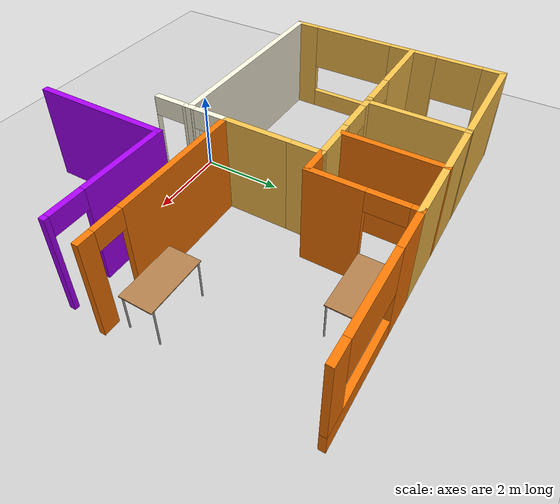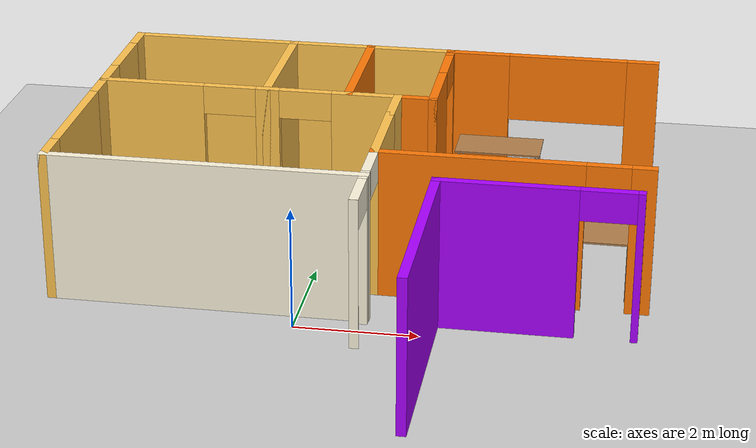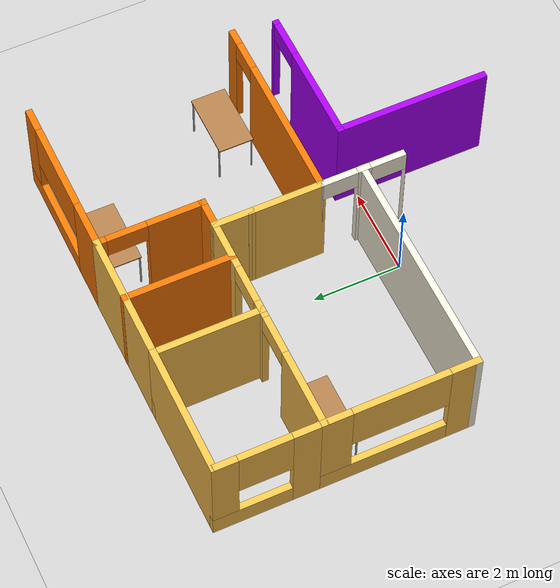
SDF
<sdf version="1.6">
 <world name="default">
  <model name="ground_plane">
   <static>1</static>
   <link name="link">
    <collision name="collision">
     <geometry><plane><normal>0 0 1</normal><size>100 100</size></plane></geometry>
     <surface><friction><ode><mu>100</mu><mu2>50</mu2></ode></friction></surface>
    </collision>
    <visual name="visual">
     <cast_shadows>0</cast_shadows>
     <geometry><plane><normal>0 0 1</normal><size>100 100</size></plane></geometry>
     <material>
      <script><uri>file://media/materials/scripts/gazebo.material</uri><name>Gazebo/Grey</name></script>
     </material>
    </visual>
   </link>
  </model>
  <model name="Building">
   <pose>0.68406 -1.71329 0 0 -0 0</pose>
   <link name="Wall_115">
    <pose>-4.7058 3.80629 0 0 -0 1.5708</pose>
    <visual name="Wall_115_Visual_0">
     <pose>-1.41322 0 1.25 0 -0 0</pose>
     <geometry><box><size>0.673551 0.15 2.5</size></box></geometry>
     <material>
      <script><uri>file://media/materials/scripts/gazebo.material</uri><name>Gazebo/Grey</name></script>
      <ambient>1 0.764706 0.305882 1</ambient>
     </material>
     <meta><layer>0</layer></meta>
    </visual>
    <collision name="Wall_115_Collision_0">
     <geometry><box><size>0.673551 0.15 2.5</size></box></geometry>
     <pose>-1.41322 0 1.25 0 -0 0</pose>
    </collision>
    <visual name="Wall_115_Visual_1">
     <pose>0.336776 0 0.25 0 -0 0</pose>
     <geometry><box><size>2.82645 0.15 0.5</size></box></geometry>
     <material>
      <script><uri>file://media/materials/scripts/gazebo.material</uri><name>Gazebo/Grey</name></script>
      <ambient>1 0.764706 0.305882 1</ambient>
     </material>
     <meta><layer>0</layer></meta>
    </visual>
    <collision name="Wall_115_Collision_1">
     <geometry><box><size>2.82645 0.15 0.5</size></box></geometry>
     <pose>0.336776 0 0.25 0 -0 0</pose>
    </collision>
    <visual name="Wall_115_Visual_2">
     <pose>1.40974 0 1.5 0 -0 0</pose>
     <geometry><box><size>0.680513 0.15 2</size></box></geometry>
     <material>
      <script><uri>file://media/materials/scripts/gazebo.material</uri><name>Gazebo/Grey</name></script>
      <ambient>1 0.764706 0.305882 1</ambient>
     </material>
     <meta><layer>0</layer></meta>
    </visual>
    <collision name="Wall_115_Collision_2">
     <geometry><box><size>0.680513 0.15 2</size></box></geometry>
     <pose>1.40974 0 1.5 0 -0 0</pose>
    </collision>
    <visual name="Wall_115_Visual_3">
     <pose>-0.003481 0 1.9 0 -0 0</pose>
     <geometry><box><size>2.14594 0.15 1.2</size></box></geometry>
     <material>
      <script><uri>file://media/materials/scripts/gazebo.material</uri><name>Gazebo/Grey</name></script>
      <ambient>1 0.764706 0.305882 1</ambient>
     </material>
     <meta><layer>0</layer></meta>
    </visual>
    <collision name="Wall_115_Collision_3">
     <geometry><box><size>2.14594 0.15 1.2</size></box></geometry>
     <pose>-0.003481 0 1.9 0 -0 0</pose>
    </collision>
   </link>
   <link name="Wall_116">
    <pose>-2.1558 5.48129 0 0 -0 0</pose>
    <visual name="Wall_116_Visual_0">
     <pose>-1.70501 0 1.25 0 -0 0</pose>
     <geometry><box><size>1.83998 0.15 2.5</size></box></geometry>
     <material>
      <script><uri>file://media/materials/scripts/gazebo.material</uri><name>Gazebo/Grey</name></script>
      <ambient>1 0.764706 0.305882 1</ambient>
     </material>
     <meta><layer>0</layer></meta>
    </visual>
    <collision name="Wall_116_Collision_0">
     <geometry><box><size>1.83998 0.15 2.5</size></box></geometry>
     <pose>-1.70501 0 1.25 0 -0 0</pose>
    </collision>
    <visual name="Wall_116_Visual_1">
     <pose>0.319979 0 1.25 0 -0 0</pose>
     <geometry><box><size>0.41 0.15 2.5</size></box></geometry>
     <material>
      <script><uri>file://media/materials/scripts/gazebo.material</uri><name>Gazebo/Grey</name></script>
      <ambient>1 0.764706 0.305882 1</ambient>
     </material>
     <meta><layer>0</layer></meta>
    </visual>
    <collision name="Wall_116_Collision_1">
     <geometry><box><size>0.41 0.15 2.5</size></box></geometry>
     <pose>0.319979 0 1.25 0 -0 0</pose>
    </collision>
    <visual name="Wall_116_Visual_2">
     <pose>2.02499 0 1.25 0 -0 0</pose>
     <geometry><box><size>1.20002 0.15 2.5</size></box></geometry>
     <material>
      <script><uri>file://media/materials/scripts/gazebo.material</uri><name>Gazebo/Grey</name></script>
      <ambient>1 0.764706 0.305882 1</ambient>
     </material>
     <meta><layer>0</layer></meta>
    </visual>
    <collision name="Wall_116_Collision_2">
     <geometry><box><size>1.20002 0.15 2.5</size></box></geometry>
     <pose>2.02499 0 1.25 0 -0 0</pose>
    </collision>
    <visual name="Wall_116_Visual_3">
     <pose>-0.335021 0 2.25 0 -0 0</pose>
     <geometry><box><size>0.9 0.15 0.5</size></box></geometry>
     <material>
      <script><uri>file://media/materials/scripts/gazebo.material</uri><name>Gazebo/Grey</name></script>
      <ambient>1 0.764706 0.305882 1</ambient>
     </material>
     <meta><layer>0</layer></meta>
    </visual>
    <collision name="Wall_116_Collision_3">
     <geometry><box><size>0.9 0.15 0.5</size></box></geometry>
     <pose>-0.335021 0 2.25 0 -0 0</pose>
    </collision>
    <visual name="Wall_116_Visual_4">
     <pose>0.974979 0 2.25 0 -0 0</pose>
     <geometry><box><size>0.9 0.15 0.5</size></box></geometry>
     <material>
      <script><uri>file://media/materials/scripts/gazebo.material</uri><name>Gazebo/Grey</name></script>
      <ambient>1 0.764706 0.305882 1</ambient>
     </material>
     <meta><layer>0</layer></meta>
    </visual>
    <collision name="Wall_116_Collision_4">
     <geometry><box><size>0.9 0.15 0.5</size></box></geometry>
     <pose>0.974979 0 2.25 0 -0 0</pose>
    </collision>
   </link>
   <link name="Wall_117">
    <collision name="Wall_117_Collision">
     <geometry><box><size>0.939813 0.15 2.5</size></box></geometry>
     <pose>0 0 1.25 0 -0 0</pose>
    </collision>
    <visual name="Wall_117_Visual">
     <pose>0 0 1.25 0 -0 0</pose>
     <geometry><box><size>0.939813 0.15 2.5</size></box></geometry>
     <material>
      <script><uri>file://media/materials/scripts/gazebo.material</uri><name>Gazebo/Grey</name></script>
      <ambient>1 0.764706 0.305882 1</ambient>
     </material>
     <meta><layer>0</layer></meta>
    </visual>
    <pose>0.390532 5.0864 0 0 0 -1.58008</pose>
   </link>
   <link name="Wall_119">
    <pose>-4.7058 6.65629 0 0 -0 1.5708</pose>
    <visual name="Wall_119_Visual_0">
     <pose>-0.875559 0 1.25 0 -0 0</pose>
     <geometry><box><size>0.748882 0.15 2.5</size></box></geometry>
     <material>
      <script><uri>file://media/materials/scripts/gazebo.material</uri><name>Gazebo/Grey</name></script>
      <ambient>1 0.764706 0.305882 1</ambient>
     </material>
     <meta><layer>0</layer></meta>
    </visual>
    <collision name="Wall_119_Collision_0">
     <geometry><box><size>0.748882 0.15 2.5</size></box></geometry>
     <pose>-0.875559 0 1.25 0 -0 0</pose>
    </collision>
    <visual name="Wall_119_Visual_1">
     <pose>0.374441 0 0.25 0 -0 0</pose>
     <geometry><box><size>1.75112 0.15 0.5</size></box></geometry>
     <material>
      <script><uri>file://media/materials/scripts/gazebo.material</uri><name>Gazebo/Grey</name></script>
      <ambient>1 0.764706 0.305882 1</ambient>
     </material>
     <meta><layer>0</layer></meta>
    </visual>
    <collision name="Wall_119_Collision_1">
     <geometry><box><size>1.75112 0.15 0.5</size></box></geometry>
     <pose>0.374441 0 0.25 0 -0 0</pose>
    </collision>
    <visual name="Wall_119_Visual_2">
     <pose>0.959696 0 1.5 0 -0 0</pose>
     <geometry><box><size>0.580608 0.15 2</size></box></geometry>
     <material>
      <script><uri>file://media/materials/scripts/gazebo.material</uri><name>Gazebo/Grey</name></script>
      <ambient>1 0.764706 0.305882 1</ambient>
     </material>
     <meta><layer>0</layer></meta>
    </visual>
    <collision name="Wall_119_Collision_2">
     <geometry><box><size>0.580608 0.15 2</size></box></geometry>
     <pose>0.959696 0 1.5 0 -0 0</pose>
    </collision>
    <visual name="Wall_119_Visual_3">
     <pose>0.084137 0 1.9 0 -0 0</pose>
     <geometry><box><size>1.17051 0.15 1.2</size></box></geometry>
     <material>
      <script><uri>file://media/materials/scripts/gazebo.material</uri><name>Gazebo/Grey</name></script>
      <ambient>1 0.764706 0.305882 1</ambient>
     </material>
     <meta><layer>0</layer></meta>
    </visual>
    <collision name="Wall_119_Collision_3">
     <geometry><box><size>1.17051 0.15 1.2</size></box></geometry>
     <pose>0.084137 0 1.9 0 -0 0</pose>
    </collision>
   </link>
   <link name="Wall_120">
    <collision name="Wall_120_Collision">
     <geometry><box><size>3 0.15 2.5</size></box></geometry>
     <pose>0 0 1.25 0 -0 0</pose>
    </collision>
    <visual name="Wall_120_Visual">
     <pose>0 0 1.25 0 -0 0</pose>
     <geometry><box><size>3 0.15 2.5</size></box></geometry>
     <material>
      <script><uri>file://media/materials/scripts/gazebo.material</uri><name>Gazebo/Grey</name></script>
      <ambient>1 0.764706 0.305882 1</ambient>
     </material>
     <meta><layer>0</layer></meta>
    </visual>
    <pose>-3.2808 7.83129 0 0 -0 0</pose>
   </link>
   <link name="Wall_121">
    <collision name="Wall_121_Collision">
     <geometry><box><size>2.5 0.15 2.5</size></box></geometry>
     <pose>0 0 1.25 0 -0 0</pose>
    </collision>
    <visual name="Wall_121_Visual">
     <pose>0 0 1.25 0 -0 0</pose>
     <geometry><box><size>2.5 0.15 2.5</size></box></geometry>
     <material>
      <script><uri>file://media/materials/scripts/gazebo.material</uri><name>Gazebo/Grey</name></script>
      <ambient>1 0.764706 0.305882 1</ambient>
     </material>
     <meta><layer>0</layer></meta>
    </visual>
    <pose>-1.8558 6.65629 0 0 0 -1.5708</pose>
   </link>
   <link name="Wall_123">
    <collision name="Wall_123_Collision">
     <geometry><box><size>0.75 0.15 2.5</size></box></geometry>
     <pose>0 0 1.25 0 -0 0</pose>
    </collision>
    <visual name="Wall_123_Visual">
     <pose>0 0 1.25 0 -0 0</pose>
     <geometry><box><size>0.75 0.15 2.5</size></box></geometry>
     <material>
      <script><uri>file://media/materials/scripts/gazebo.material</uri><name>Gazebo/Grey</name></script>
      <ambient>0.996078 0.47451 0.0196078 1</ambient>
     </material>
     <meta><layer>0</layer></meta>
    </visual>
    <pose>0.694198 5.48129 0 0 -0 0</pose>
   </link>
   <link name="Wall_124">
    <pose>0.994198 6.65629 0 0 -0 1.5708</pose>
    <visual name="Wall_124_Visual_0">
     <pose>-0.586337 0 1.25 0 -0 0</pose>
     <geometry><box><size>1.32733 0.15 2.5</size></box></geometry>
     <material>
      <script><uri>file://media/materials/scripts/gazebo.material</uri><name>Gazebo/Grey</name></script>
      <ambient>0.996078 0.47451 0.0196078 1</ambient>
     </material>
     <meta><layer>0</layer></meta>
    </visual>
    <collision name="Wall_124_Collision_0">
     <geometry><box><size>1.32733 0.15 2.5</size></box></geometry>
     <pose>-0.586337 0 1.25 0 -0 0</pose>
    </collision>
    <visual name="Wall_124_Visual_1">
     <pose>1.11366 0 1.25 0 -0 0</pose>
     <geometry><box><size>0.272675 0.15 2.5</size></box></geometry>
     <material>
      <script><uri>file://media/materials/scripts/gazebo.material</uri><name>Gazebo/Grey</name></script>
      <ambient>0.996078 0.47451 0.0196078 1</ambient>
     </material>
     <meta><layer>0</layer></meta>
    </visual>
    <collision name="Wall_124_Collision_1">
     <geometry><box><size>0.272675 0.15 2.5</size></box></geometry>
     <pose>1.11366 0 1.25 0 -0 0</pose>
    </collision>
    <visual name="Wall_124_Visual_2">
     <pose>0.527325 0 2.25 0 -0 0</pose>
     <geometry><box><size>0.9 0.15 0.5</size></box></geometry>
     <material>
      <script><uri>file://media/materials/scripts/gazebo.material</uri><name>Gazebo/Grey</name></script>
      <ambient>0.996078 0.47451 0.0196078 1</ambient>
     </material>
     <meta><layer>0</layer></meta>
    </visual>
    <collision name="Wall_124_Collision_2">
     <geometry><box><size>0.9 0.15 0.5</size></box></geometry>
     <pose>0.527325 0 2.25 0 -0 0</pose>
    </collision>
   </link>
   <link name="Wall_125">
    <collision name="Wall_125_Collision">
     <geometry><box><size>3 0.15 2.5</size></box></geometry>
     <pose>0 0 1.25 0 -0 0</pose>
    </collision>
    <visual name="Wall_125_Visual">
     <pose>0 0 1.25 0 -0 0</pose>
     <geometry><box><size>3 0.15 2.5</size></box></geometry>
     <material>
      <script><uri>file://media/materials/scripts/gazebo.material</uri><name>Gazebo/Grey</name></script>
      <ambient>1 0.764706 0.305882 1</ambient>
     </material>
     <meta><layer>0</layer></meta>
    </visual>
    <pose>-0.430802 7.83129 0 0 0 -3.14159</pose>
   </link>
   <link name="Wall_127">
    <pose>2.7942 7.83129 0 0 -0 0</pose>
    <visual name="Wall_127_Visual_0">
     <pose>-1.31004 0 1.25 0 -0 0</pose>
     <geometry><box><size>1.12992 0.15 2.5</size></box></geometry>
     <material>
      <script><uri>file://media/materials/scripts/gazebo.material</uri><name>Gazebo/Grey</name></script>
      <ambient>0.996078 0.47451 0.0196078 1</ambient>
     </material>
     <meta><layer>0</layer></meta>
    </visual>
    <collision name="Wall_127_Collision_0">
     <geometry><box><size>1.12992 0.15 2.5</size></box></geometry>
     <pose>-1.31004 0 1.25 0 -0 0</pose>
    </collision>
    <visual name="Wall_127_Visual_1">
     <pose>0.564959 0 0.25 0 -0 0</pose>
     <geometry><box><size>2.62008 0.15 0.5</size></box></geometry>
     <material>
      <script><uri>file://media/materials/scripts/gazebo.material</uri><name>Gazebo/Grey</name></script>
      <ambient>0.996078 0.47451 0.0196078 1</ambient>
     </material>
     <meta><layer>0</layer></meta>
    </visual>
    <collision name="Wall_127_Collision_1">
     <geometry><box><size>2.62008 0.15 0.5</size></box></geometry>
     <pose>0.564959 0 0.25 0 -0 0</pose>
    </collision>
    <visual name="Wall_127_Visual_2">
     <pose>1.59653 0 1.5 0 -0 0</pose>
     <geometry><box><size>0.556934 0.15 2</size></box></geometry>
     <material>
      <script><uri>file://media/materials/scripts/gazebo.material</uri><name>Gazebo/Grey</name></script>
      <ambient>0.996078 0.47451 0.0196078 1</ambient>
     </material>
     <meta><layer>0</layer></meta>
    </visual>
    <collision name="Wall_127_Collision_2">
     <geometry><box><size>0.556934 0.15 2</size></box></geometry>
     <pose>1.59653 0 1.5 0 -0 0</pose>
    </collision>
    <visual name="Wall_127_Visual_3">
     <pose>0.286491 0 1.9 0 -0 0</pose>
     <geometry><box><size>2.06315 0.15 1.2</size></box></geometry>
     <material>
      <script><uri>file://media/materials/scripts/gazebo.material</uri><name>Gazebo/Grey</name></script>
      <ambient>0.996078 0.47451 0.0196078 1</ambient>
     </material>
     <meta><layer>0</layer></meta>
    </visual>
    <collision name="Wall_127_Collision_3">
     <geometry><box><size>2.06315 0.15 1.2</size></box></geometry>
     <pose>0.286491 0 1.9 0 -0 0</pose>
    </collision>
   </link>
   <link name="Wall_129">
    <collision name="Wall_129_Collision">
     <geometry><box><size>2.5 0.15 2.5</size></box></geometry>
     <pose>0 0 1.25 0 -0 0</pose>
    </collision>
    <visual name="Wall_129_Visual">
     <pose>0 0 1.25 0 -0 0</pose>
     <geometry><box><size>2.5 0.15 2.5</size></box></geometry>
     <material>
      <script><uri>file://media/materials/scripts/gazebo.material</uri><name>Gazebo/Grey</name></script>
      <ambient>0.996078 0.47451 0.0196078 1</ambient>
     </material>
     <meta><layer>0</layer></meta>
    </visual>
    <pose>-0.450823 6.65861 0 0 -0 1.5708</pose>
   </link>
   <link name="Wall_23">
    <pose>0.386867 2.16651 0 0 0 -1.5708</pose>
    <visual name="Wall_23_Visual_0">
     <pose>-0.953706 0 1.25 0 -0 0</pose>
     <geometry><box><size>0.092589 0.15 2.5</size></box></geometry>
     <material>
      <script><uri>file://media/materials/scripts/gazebo.material</uri><name>Gazebo/Grey</name></script>
      <ambient>1 0.968627 0.870588 1</ambient>
     </material>
     <meta><layer>0</layer></meta>
    </visual>
    <collision name="Wall_23_Collision_0">
     <geometry><box><size>0.092589 0.15 2.5</size></box></geometry>
     <pose>-0.953706 0 1.25 0 -0 0</pose>
    </collision>
    <visual name="Wall_23_Visual_1">
     <pose>0.044331 0 1.25 0 -0 0</pose>
     <geometry><box><size>0.303484 0.15 2.5</size></box></geometry>
     <material>
      <script><uri>file://media/materials/scripts/gazebo.material</uri><name>Gazebo/Grey</name></script>
      <ambient>1 0.968627 0.870588 1</ambient>
     </material>
     <meta><layer>0</layer></meta>
    </visual>
    <collision name="Wall_23_Collision_1">
     <geometry><box><size>0.303484 0.15 2.5</size></box></geometry>
     <pose>0.044331 0 1.25 0 -0 0</pose>
    </collision>
    <visual name="Wall_23_Visual_2">
     <pose>0.998036 0 1.25 0 -0 0</pose>
     <geometry><box><size>0.003927 0.15 2.5</size></box></geometry>
     <material>
      <script><uri>file://media/materials/scripts/gazebo.material</uri><name>Gazebo/Grey</name></script>
      <ambient>1 0.968627 0.870588 1</ambient>
     </material>
     <meta><layer>0</layer></meta>
    </visual>
    <collision name="Wall_23_Collision_2">
     <geometry><box><size>0.003927 0.15 2.5</size></box></geometry>
     <pose>0.998036 0 1.25 0 -0 0</pose>
    </collision>
    <visual name="Wall_23_Visual_3">
     <pose>-0.507411 0 2.25 0 -0 0</pose>
     <geometry><box><size>0.8 0.15 0.5</size></box></geometry>
     <material>
      <script><uri>file://media/materials/scripts/gazebo.material</uri><name>Gazebo/Grey</name></script>
      <ambient>1 0.968627 0.870588 1</ambient>
     </material>
     <meta><layer>0</layer></meta>
    </visual>
    <collision name="Wall_23_Collision_3">
     <geometry><box><size>0.8 0.15 0.5</size></box></geometry>
     <pose>-0.507411 0 2.25 0 -0 0</pose>
    </collision>
    <visual name="Wall_23_Visual_4">
     <pose>0.596073 0 2.25 0 -0 0</pose>
     <geometry><box><size>0.8 0.15 0.5</size></box></geometry>
     <material>
      <script><uri>file://media/materials/scripts/gazebo.material</uri><name>Gazebo/Grey</name></script>
      <ambient>1 0.968627 0.870588 1</ambient>
     </material>
     <meta><layer>0</layer></meta>
    </visual>
    <collision name="Wall_23_Collision_4">
     <geometry><box><size>0.8 0.15 0.5</size></box></geometry>
     <pose>0.596073 0 2.25 0 -0 0</pose>
    </collision>
   </link>
   <link name="Wall_30">
    <collision name="Wall_30_Collision">
     <geometry><box><size>1.75 0.15 2.5</size></box></geometry>
     <pose>0 0 1.25 0 -0 0</pose>
    </collision>
    <visual name="Wall_30_Visual">
     <pose>0 0 1.25 0 -0 0</pose>
     <geometry><box><size>1.75 0.15 2.5</size></box></geometry>
     <material>
      <script><uri>file://media/materials/scripts/gazebo.material</uri><name>Gazebo/Grey</name></script>
      <ambient>1 0.764706 0.305882 1</ambient>
     </material>
     <meta><layer>0</layer></meta>
    </visual>
    <pose>0.386867 3.89151 0 0 -0 1.5708</pose>
   </link>
   <link name="Wall_42">
    <collision name="Wall_42_Collision">
     <geometry><box><size>5.25 0.15 2.5</size></box></geometry>
     <pose>0 0 1.25 0 -0 0</pose>
    </collision>
    <visual name="Wall_42_Visual">
     <pose>0 0 1.25 0 -0 0</pose>
     <geometry><box><size>5.25 0.15 2.5</size></box></geometry>
     <material>
      <script><uri>file://media/materials/scripts/gazebo.material</uri><name>Gazebo/Grey</name></script>
      <ambient>1 0.968627 0.870588 1</ambient>
     </material>
     <meta><layer>0</layer></meta>
    </visual>
    <pose>-2.1558 2.13129 0 0 -0 3.14159</pose>
   </link>
   <link name="Wall_75">
    <collision name="Wall_75_Collision">
     <geometry><box><size>3.5 0.15 2.5</size></box></geometry>
     <pose>0 0 1.25 0 -0 0</pose>
    </collision>
    <visual name="Wall_75_Visual">
     <pose>0 0 1.25 0 -0 0</pose>
     <geometry><box><size>3.5 0.15 2.5</size></box></geometry>
     <material>
      <script><uri>file://media/materials/scripts/gazebo.material</uri><name>Gazebo/Grey</name></script>
      <ambient>0.666667 0 1 1</ambient>
     </material>
     <meta><layer>0</layer></meta>
    </visual>
    <pose>1.4942 0.456287 0 0 -0 1.5708</pose>
   </link>
   <link name="Wall_77">
    <pose>2.56187 3.09151 0 0 -0 0</pose>
    <visual name="Wall_77_Visual_0">
     <pose>-0.548845 0 1.25 0 -0 0</pose>
     <geometry><box><size>3.40231 0.15 2.5</size></box></geometry>
     <material>
      <script><uri>file://media/materials/scripts/gazebo.material</uri><name>Gazebo/Grey</name></script>
      <ambient>0.996078 0.47451 0.0196078 1</ambient>
     </material>
     <meta><layer>0</layer></meta>
    </visual>
    <collision name="Wall_77_Collision_0">
     <geometry><box><size>3.40231 0.15 2.5</size></box></geometry>
     <pose>-0.548845 0 1.25 0 -0 0</pose>
    </collision>
    <visual name="Wall_77_Visual_1">
     <pose>2.05116 0 1.25 0 -0 0</pose>
     <geometry><box><size>0.39769 0.15 2.5</size></box></geometry>
     <material>
      <script><uri>file://media/materials/scripts/gazebo.material</uri><name>Gazebo/Grey</name></script>
      <ambient>0.996078 0.47451 0.0196078 1</ambient>
     </material>
     <meta><layer>0</layer></meta>
    </visual>
    <collision name="Wall_77_Collision_1">
     <geometry><box><size>0.39769 0.15 2.5</size></box></geometry>
     <pose>2.05116 0 1.25 0 -0 0</pose>
    </collision>
    <visual name="Wall_77_Visual_2">
     <pose>1.50231 0 2.25 0 -0 0</pose>
     <geometry><box><size>0.7 0.15 0.5</size></box></geometry>
     <material>
      <script><uri>file://media/materials/scripts/gazebo.material</uri><name>Gazebo/Grey</name></script>
      <ambient>0.996078 0.47451 0.0196078 1</ambient>
     </material>
     <meta><layer>0</layer></meta>
    </visual>
    <collision name="Wall_77_Collision_2">
     <geometry><box><size>0.7 0.15 0.5</size></box></geometry>
     <pose>1.50231 0 2.25 0 -0 0</pose>
    </collision>
   </link>
   <link name="Wall_79">
    <pose>3.0442 2.13129 0 0 -0 0</pose>
    <visual name="Wall_79_Visual_0">
     <pose>-0.492511 0 1.25 0 -0 0</pose>
     <geometry><box><size>2.26498 0.15 2.5</size></box></geometry>
     <material>
      <script><uri>file://media/materials/scripts/gazebo.material</uri><name>Gazebo/Grey</name></script>
      <ambient>0.666667 0 1 1</ambient>
     </material>
     <meta><layer>0</layer></meta>
    </visual>
    <collision name="Wall_79_Collision_0">
     <geometry><box><size>2.26498 0.15 2.5</size></box></geometry>
     <pose>-0.492511 0 1.25 0 -0 0</pose>
    </collision>
    <visual name="Wall_79_Visual_1">
     <pose>1.56749 0 1.25 0 -0 0</pose>
     <geometry><box><size>0.115021 0.15 2.5</size></box></geometry>
     <material>
      <script><uri>file://media/materials/scripts/gazebo.material</uri><name>Gazebo/Grey</name></script>
      <ambient>0.666667 0 1 1</ambient>
     </material>
     <meta><layer>0</layer></meta>
    </visual>
    <collision name="Wall_79_Collision_1">
     <geometry><box><size>0.115021 0.15 2.5</size></box></geometry>
     <pose>1.56749 0 1.25 0 -0 0</pose>
    </collision>
    <visual name="Wall_79_Visual_2">
     <pose>1.07498 0 2.25 0 -0 0</pose>
     <geometry><box><size>0.87 0.15 0.5</size></box></geometry>
     <material>
      <script><uri>file://media/materials/scripts/gazebo.material</uri><name>Gazebo/Grey</name></script>
      <ambient>0.666667 0 1 1</ambient>
     </material>
     <meta><layer>0</layer></meta>
    </visual>
    <collision name="Wall_79_Collision_2">
     <geometry><box><size>0.87 0.15 0.5</size></box></geometry>
     <pose>1.07498 0 2.25 0 -0 0</pose>
    </collision>
   </link>
   <static>1</static>
  </model>
  <model name="table_2_clone">
   <static>1</static>
   <link name="link">
    <collision name="surface">
     <pose>0 0 1 0 -0 0</pose>
     <geometry><box><size>1.5 0.8 0.03</size></box></geometry>
     <surface><friction><ode><mu>0.6</mu><mu2>0.6</mu2></ode></friction></surface>
    </collision>
    <visual name="visual1">
     <pose>0 0 1 0 -0 0</pose>
     <geometry><box><size>1.5 0.8 0.03</size></box></geometry>
     <material>
      <script><uri>file://media/materials/scripts/gazebo.material</uri><name>Gazebo/Wood</name></script>
     </material>
    </visual>
    <collision name="front_left_leg">
     <pose>0.68 0.38 0.5 0 -0 0</pose>
     <geometry><cylinder><radius>0.02</radius><length>1</length></cylinder></geometry>
    </collision>
    <visual name="front_left_leg">
     <pose>0.68 0.38 0.5 0 -0 0</pose>
     <geometry><cylinder><radius>0.02</radius><length>1</length></cylinder></geometry>
     <material>
      <script><uri>file://media/materials/scripts/gazebo.material</uri><name>Gazebo/Grey</name></script>
     </material>
    </visual>
    <collision name="front_right_leg">
     <pose>0.68 -0.38 0.5 0 -0 0</pose>
     <geometry><cylinder><radius>0.02</radius><length>1</length></cylinder></geometry>
    </collision>
    <visual name="front_right_leg">
     <pose>0.68 -0.38 0.5 0 -0 0</pose>
     <geometry><cylinder><radius>0.02</radius><length>1</length></cylinder></geometry>
     <material>
      <script><uri>file://media/materials/scripts/gazebo.material</uri><name>Gazebo/Grey</name></script>
     </material>
    </visual>
    <collision name="back_right_leg">
     <pose>-0.68 -0.38 0.5 0 -0 0</pose>
     <geometry><cylinder><radius>0.02</radius><length>1</length></cylinder></geometry>
    </collision>
    <visual name="back_right_leg">
     <pose>-0.68 -0.38 0.5 0 -0 0</pose>
     <geometry><cylinder><radius>0.02</radius><length>1</length></cylinder></geometry>
     <material>
      <script><uri>file://media/materials/scripts/gazebo.material</uri><name>Gazebo/Grey</name></script>
     </material>
    </visual>
    <collision name="back_left_leg">
     <pose>-0.68 0.38 0.5 0 -0 0</pose>
     <geometry><cylinder><radius>0.02</radius><length>1</length></cylinder></geometry>
    </collision>
    <visual name="back_left_leg">
     <pose>-0.68 0.38 0.5 0 -0 0</pose>
     <geometry><cylinder><radius>0.02</radius><length>1</length></cylinder></geometry>
     <material>
      <script><uri>file://media/materials/scripts/gazebo.material</uri><name>Gazebo/Grey</name></script>
     </material>
    </visual>
   </link>
   <pose>-3.05304 3.24078 0 0 -0 0</pose>
  </model>
  <model name="table_2_clone_0">
   <static>1</static>
   <link name="link">
    <collision name="surface">
     <pose>0 0 1 0 -0 0</pose>
     <geometry><box><size>1.5 0.8 0.03</size></box></geometry>
     <surface><friction><ode><mu>0.6</mu><mu2>0.6</mu2></ode></friction></surface>
    </collision>
    <visual name="visual1">
     <pose>0 0 1 0 -0 0</pose>
     <geometry><box><size>1.5 0.8 0.03</size></box></geometry>
     <material>
      <script><uri>file://media/materials/scripts/gazebo.material</uri><name>Gazebo/Wood</name></script>
     </material>
    </visual>
    <collision name="front_left_leg">
     <pose>0.68 0.38 0.5 0 -0 0</pose>
     <geometry><cylinder><radius>0.02</radius><length>1</length></cylinder></geometry>
    </collision>
    <visual name="front_left_leg">
     <pose>0.68 0.38 0.5 0 -0 0</pose>
     <geometry><cylinder><radius>0.02</radius><length>1</length></cylinder></geometry>
     <material>
      <script><uri>file://media/materials/scripts/gazebo.material</uri><name>Gazebo/Grey</name></script>
     </material>
    </visual>
    <collision name="front_right_leg">
     <pose>0.68 -0.38 0.5 0 -0 0</pose>
     <geometry><cylinder><radius>0.02</radius><length>1</length></cylinder></geometry>
    </collision>
    <visual name="front_right_leg">
     <pose>0.68 -0.38 0.5 0 -0 0</pose>
     <geometry><cylinder><radius>0.02</radius><length>1</length></cylinder></geometry>
     <material>
      <script><uri>file://media/materials/scripts/gazebo.material</uri><name>Gazebo/Grey</name></script>
     </material>
    </visual>
    <collision name="back_right_leg">
     <pose>-0.68 -0.38 0.5 0 -0 0</pose>
     <geometry><cylinder><radius>0.02</radius><length>1</length></cylinder></geometry>
    </collision>
    <visual name="back_right_leg">
     <pose>-0.68 -0.38 0.5 0 -0 0</pose>
     <geometry><cylinder><radius>0.02</radius><length>1</length></cylinder></geometry>
     <material>
      <script><uri>file://media/materials/scripts/gazebo.material</uri><name>Gazebo/Grey</name></script>
     </material>
    </visual>
    <collision name="back_left_leg">
     <pose>-0.68 0.38 0.5 0 -0 0</pose>
     <geometry><cylinder><radius>0.02</radius><length>1</length></cylinder></geometry>
    </collision>
    <visual name="back_left_leg">
     <pose>-0.68 0.38 0.5 0 -0 0</pose>
     <geometry><cylinder><radius>0.02</radius><length>1</length></cylinder></geometry>
     <material>
      <script><uri>file://media/materials/scripts/gazebo.material</uri><name>Gazebo/Grey</name></script>
     </material>
    </visual>
   </link>
   <pose>2.64799 5.49628 0 0 -0 0</pose>
  </model>
  <model name="table_2_clone_1">
   <static>1</static>
   <link name="link">
    <collision name="surface">
     <pose>0 0 1 0 -0 0</pose>
     <geometry><box><size>1.5 0.8 0.03</size></box></geometry>
     <surface><friction><ode><mu>0.6</mu><mu2>0.6</mu2></ode></friction></surface>
    </collision>
    <visual name="visual1">
     <pose>0 0 1 0 -0 0</pose>
     <geometry><box><size>1.5 0.8 0.03</size></box></geometry>
     <material>
      <script><uri>file://media/materials/scripts/gazebo.material</uri><name>Gazebo/Wood</name></script>
     </material>
    </visual>
    <collision name="front_left_leg">
     <pose>0.68 0.38 0.5 0 -0 0</pose>
     <geometry><cylinder><radius>0.02</radius><length>1</length></cylinder></geometry>
    </collision>
    <visual name="front_left_leg">
     <pose>0.68 0.38 0.5 0 -0 0</pose>
     <geometry><cylinder><radius>0.02</radius><length>1</length></cylinder></geometry>
     <material>
      <script><uri>file://media/materials/scripts/gazebo.material</uri><name>Gazebo/Grey</name></script>
     </material>
    </visual>
    <collision name="front_right_leg">
     <pose>0.68 -0.38 0.5 0 -0 0</pose>
     <geometry><cylinder><radius>0.02</radius><length>1</length></cylinder></geometry>
    </collision>
    <visual name="front_right_leg">
     <pose>0.68 -0.38 0.5 0 -0 0</pose>
     <geometry><cylinder><radius>0.02</radius><length>1</length></cylinder></geometry>
     <material>
      <script><uri>file://media/materials/scripts/gazebo.material</uri><name>Gazebo/Grey</name></script>
     </material>
    </visual>
    <collision name="back_right_leg">
     <pose>-0.68 -0.38 0.5 0 -0 0</pose>
     <geometry><cylinder><radius>0.02</radius><length>1</length></cylinder></geometry>
    </collision>
    <visual name="back_right_leg">
     <pose>-0.68 -0.38 0.5 0 -0 0</pose>
     <geometry><cylinder><radius>0.02</radius><length>1</length></cylinder></geometry>
     <material>
      <script><uri>file://media/materials/scripts/gazebo.material</uri><name>Gazebo/Grey</name></script>
     </material>
    </visual>
    <collision name="back_left_leg">
     <pose>-0.68 0.38 0.5 0 -0 0</pose>
     <geometry><cylinder><radius>0.02</radius><length>1</length></cylinder></geometry>
    </collision>
    <visual name="back_left_leg">
     <pose>-0.68 0.38 0.5 0 -0 0</pose>
     <geometry><cylinder><radius>0.02</radius><length>1</length></cylinder></geometry>
     <material>
      <script><uri>file://media/materials/scripts/gazebo.material</uri><name>Gazebo/Grey</name></script>
     </material>
    </visual>
   </link>
   <pose>4.41922 2.11 0 0 -0 0</pose>
  </model>
 </world>
</sdf>
